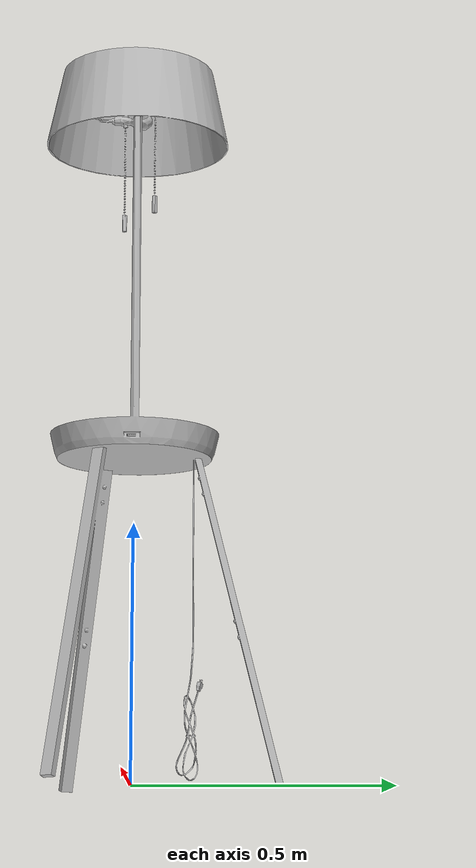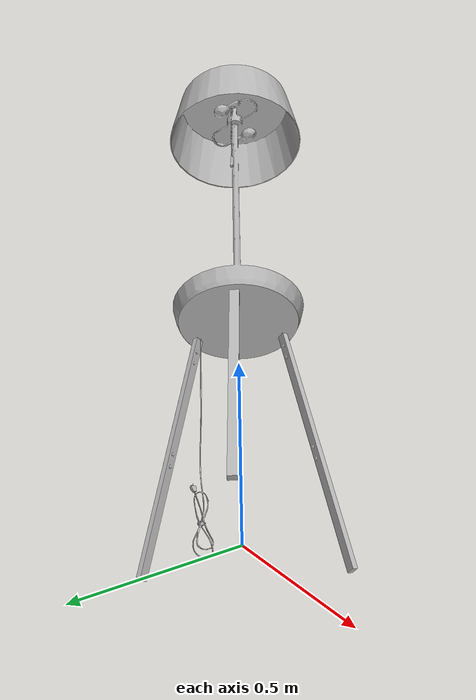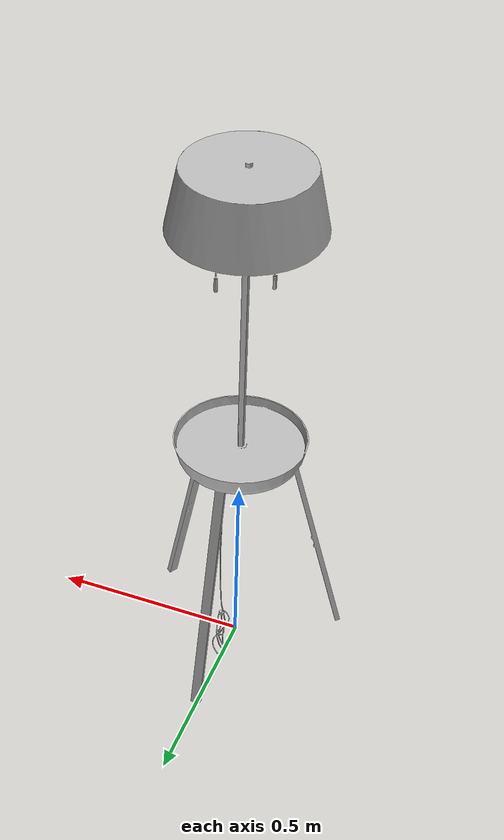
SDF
<sdf version="1.6">
	<model name="FloorLamps_O522eadaec3d5_lod0">
		<link name="main_link">
			<visual name="visual_RootNode">
				<geometry>
					<mesh>
						<uri>model://FloorLamps_O522eadaec3d5_lod0/meshes/visual_RootNode.dae</uri>
					</mesh>
				</geometry>
			</visual>
			<collision name="collision_RootNode_lod0_0">
				<geometry>
					<mesh>
						<uri>model://FloorLamps_O522eadaec3d5_lod0/meshes/collision_RootNode_lod0_0.dae</uri>
					</mesh>
				</geometry>
			</collision>
		</link>
	</model>
</sdf>
